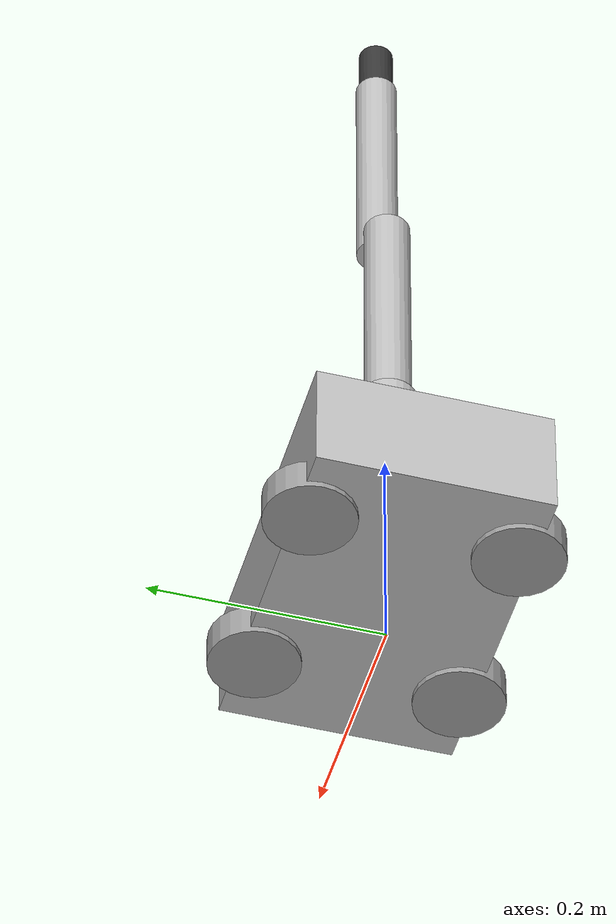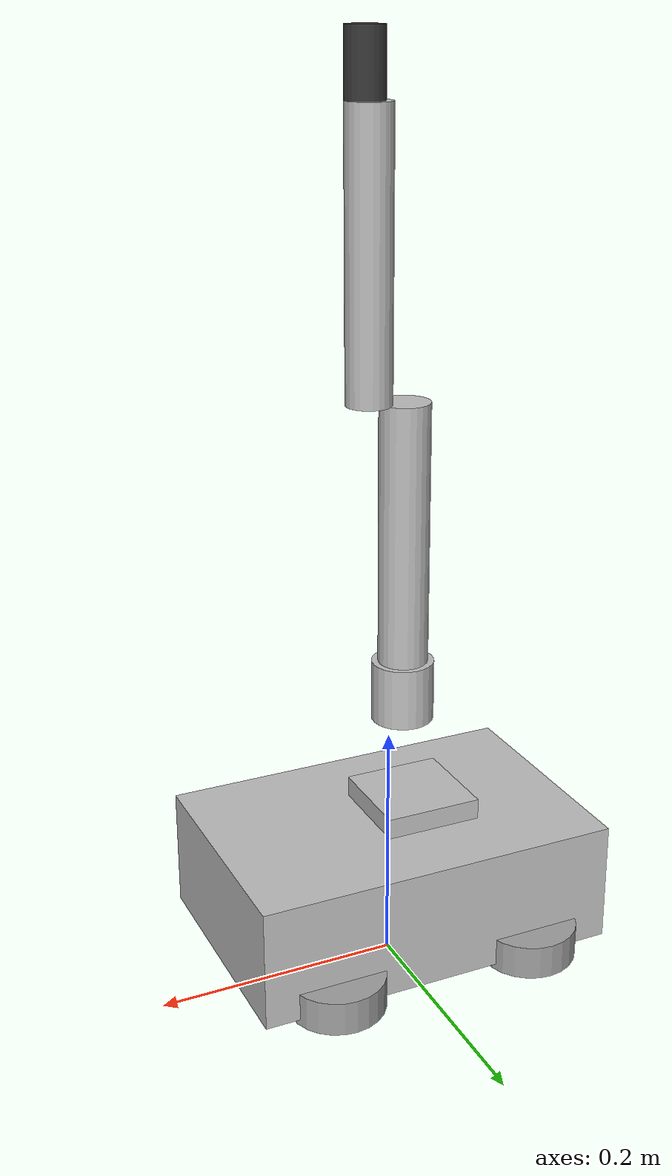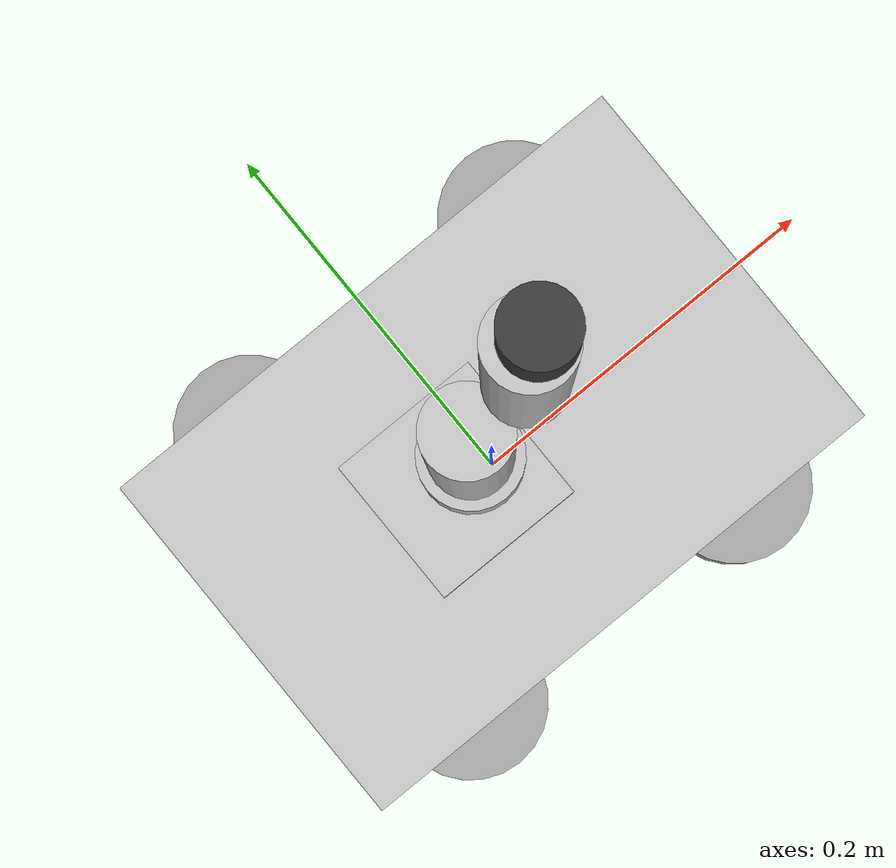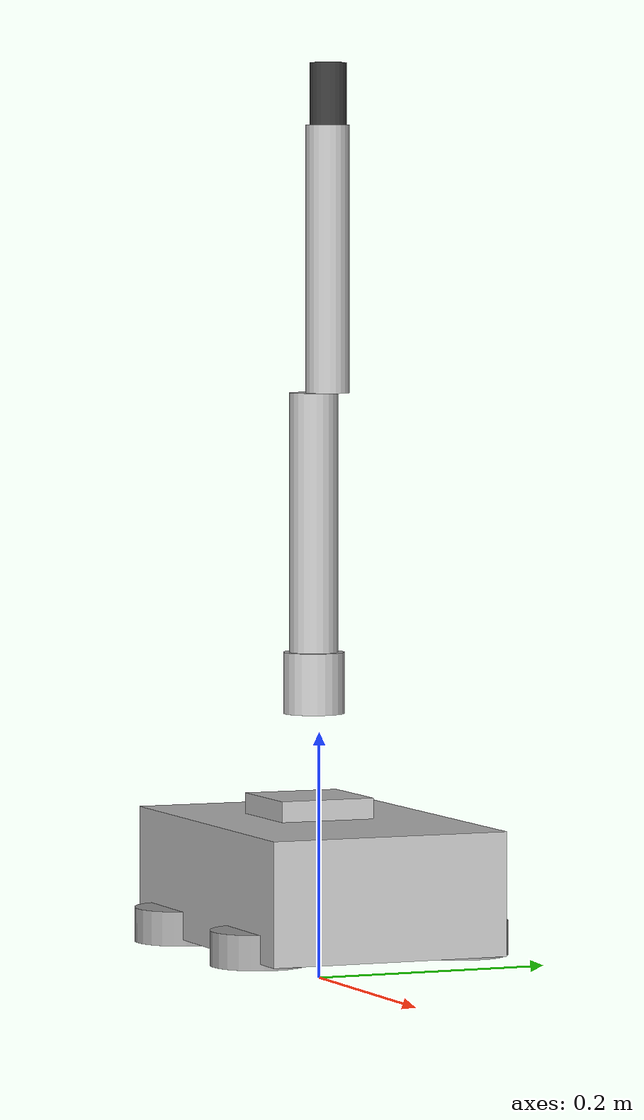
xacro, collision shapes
<?xml version="1.0"?>
<robot xmlns:xacro="http://www.ros.org/wiki/xacro" name="ugv02_with_arm">

  <xacro:include filename="$(find ugv_with_arm_camera_description)/urdf/components/ugv_rover_base.urdf.xacro"/>
  <xacro:include filename="$(find ugv_with_arm_camera_description)/urdf/components/roarm_m2s.urdf.xacro"/>
  <xacro:include filename="$(find ugv_with_arm_camera_description)/urdf/components/oak_d_pro.urdf.xacro"/>

  <!-- UGV02 chassis -->
  <xacro:ugv_rover_base prefix=""/>

  <!--
    RoArm M2-S — measured from base_link origin
    x = -22.3mm (behind center)
    y =   0.0mm (centered)
    z = +88.0mm (above base_link)
  -->
  <xacro:roarm_m2s
    prefix="arm_"
    parent="base_link"
    origin_xyz="-0.0223 0.0 0.037"
    origin_rpy="0 0 0"
  />

  <!--
    OAK-D Pro — measured from base_link origin
    x = +60.45mm (forward)
    y =   0.0mm  (centered)
    z = +76.88mm (above base_link)
    No tilt.
  -->
  <xacro:oak_d_pro
    prefix="oak_d_pro_"
    parent="base_link"
    origin_xyz="0.06045 0.0 0.024"
    origin_rpy="0 0 0"
  />

</robot>

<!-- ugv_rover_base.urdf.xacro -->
<robot xmlns:xacro="http://www.ros.org/wiki/xacro" name="ugv_rover_base">
<xacro:macro name="ugv_rover_base" params="prefix:='' wheel_joint_type:='continuous'">

  <link name="${prefix}base_footprint"/>

  <joint name="${prefix}base_joint" type="fixed">
    <parent link="${prefix}base_footprint"/>
    <child  link="${prefix}base_link"/>
    <origin xyz="0.000460087791654118 0 0.08" rpy="0 0 0"/>
  </joint>

  <link name="${prefix}base_link">
    <inertial>
      <origin xyz="-0.000460087791654118 0 -0.0147959620149623" rpy="0 0 0"/>
      <mass value="2.78375064359473"/>
      <inertia ixx="0.00651567554169617" ixy="0" ixz="3.77886436056975E-05"
               iyy="0.00933991752413667" iyz="0" izz="0.0121583506563461"/>
    </inertial>
    <visual>
      <origin xyz="0 0 0" rpy="0 0 0"/>
      <geometry>
        <mesh filename="package://ugv_description/meshes/ugv_rover/base_link.stl"/>
      </geometry>
      <material name="chassis_grey"><color rgba="0.75 0.75 0.75 1"/></material>
    </visual>
    <collision>
      <origin xyz="0 0 0" rpy="0 0 0"/>
      <geometry><box size="0.30 0.20 0.10"/></geometry>
    </collision>
  </link>

  <joint name="${prefix}imu_joint" type="fixed">
    <parent link="${prefix}base_link"/>
    <child  link="${prefix}base_imu_link"/>
    <origin xyz="0 0 0" rpy="0 0 0"/>
  </joint>
  <link name="${prefix}base_imu_link"/>

  <!-- Left front wheel -->
  <joint name="${prefix}left_up_wheel_joint" type="${wheel_joint_type}">
    <origin xyz="0.0855 0.08726 -0.041212" rpy="1.5708 0 0"/>
    <parent link="${prefix}base_link"/>
    <child  link="${prefix}left_up_wheel_link"/>
    <axis xyz="0 0 -1"/>
  </joint>
  <link name="${prefix}left_up_wheel_link">
    <inertial>
      <origin xyz="0 0 0" rpy="1.5708 0 0"/>
      <mass value="0.207085933743005"/>
      <inertia ixx="0.000116541923504163" ixy="0" ixz="0"
               iyy="0.000170742352371108" iyz="0" izz="0.000116541923504163"/>
    </inertial>
    <visual>
      <origin xyz="0 0 0" rpy="1.5708 0 0"/>
      <geometry>
        <mesh filename="package://ugv_description/meshes/ugv_rover/left_up_wheel_link.stl"/>
      </geometry>
      <material name="wheel_grey"><color rgba="0.627 0.627 0.627 1"/></material>
    </visual>
    <collision>
      <origin xyz="0 0 0" rpy="1.5708 0 0"/>
      <geometry><cylinder radius="0.039" length="0.028"/></geometry>
    </collision>
  </link>

  <!-- Left rear wheel -->
  <joint name="${prefix}left_down_wheel_joint" type="${wheel_joint_type}">
    <origin xyz="-0.0855 0.08726 -0.041212" rpy="1.5708 0 0"/>
    <parent link="${prefix}base_link"/>
    <child  link="${prefix}left_down_wheel_link"/>
    <axis xyz="0 0 -1"/>
  </joint>
  <link name="${prefix}left_down_wheel_link">
    <inertial>
      <origin xyz="0 0 0" rpy="1.5708 0 0"/>
      <mass value="0.207085933743005"/>
      <inertia ixx="0.000116541923504163" ixy="0" ixz="0"
               iyy="0.000170742352371108" iyz="0" izz="0.000116541923504163"/>
    </inertial>
    <visual>
      <origin xyz="0 0 0" rpy="1.5708 0 0"/>
      <geometry>
        <mesh filename="package://ugv_description/meshes/ugv_rover/left_down_wheel_link.stl"/>
      </geometry>
      <material name="wheel_grey"><color rgba="0.627 0.627 0.627 1"/></material>
    </visual>
    <collision>
      <origin xyz="0 0 0" rpy="1.5708 0 0"/>
      <geometry><cylinder radius="0.039" length="0.028"/></geometry>
    </collision>
  </link>

  <!-- Right front wheel -->
  <joint name="${prefix}right_up_wheel_joint" type="${wheel_joint_type}">
    <origin xyz="0.0855 -0.08726 -0.041212" rpy="1.5708 0 0"/>
    <parent link="${prefix}base_link"/>
    <child  link="${prefix}right_up_wheel_link"/>
    <axis xyz="0 0 -1"/>
  </joint>
  <link name="${prefix}right_up_wheel_link">
    <inertial>
      <origin xyz="0 0 0" rpy="1.5708 0 0"/>
      <mass value="0.207085933743005"/>
      <inertia ixx="0.000116541923504163" ixy="0" ixz="0"
               iyy="0.000170742352371108" iyz="0" izz="0.000116541923504163"/>
    </inertial>
    <visual>
      <origin xyz="0 0 0" rpy="1.5708 0 0"/>
      <geometry>
        <mesh filename="package://ugv_description/meshes/ugv_rover/right_up_wheel_link.stl"/>
      </geometry>
      <material name="wheel_grey"><color rgba="0.627 0.627 0.627 1"/></material>
    </visual>
    <collision>
      <origin xyz="0 0 0" rpy="1.5708 0 0"/>
      <geometry><cylinder radius="0.039" length="0.028"/></geometry>
    </collision>
  </link>

  <!-- Right rear wheel -->
  <joint name="${prefix}right_down_wheel_joint" type="${wheel_joint_type}">
    <origin xyz="-0.0855 -0.08726 -0.041212" rpy="1.5708 0 0"/>
    <parent link="${prefix}base_link"/>
    <child  link="${prefix}right_down_wheel_link"/>
    <axis xyz="0 0 -1"/>
  </joint>
  <link name="${prefix}right_down_wheel_link">
    <inertial>
      <origin xyz="0 0 0" rpy="1.5708 0 0"/>
      <mass value="0.207085933743005"/>
      <inertia ixx="0.000116541923504163" ixy="0" ixz="0"
               iyy="0.000170742352371108" iyz="0" izz="0.000116541923504163"/>
    </inertial>
    <visual>
      <origin xyz="0 0 0" rpy="1.5708 0 0"/>
      <geometry>
        <mesh filename="package://ugv_description/meshes/ugv_rover/right_down_wheel_link.stl"/>
      </geometry>
      <material name="wheel_grey"><color rgba="0.627 0.627 0.627 1"/></material>
    </visual>
    <collision>
      <origin xyz="0 0 0" rpy="1.5708 0 0"/>
      <geometry><cylinder radius="0.039" length="0.028"/></geometry>
    </collision>
  </link>

</xacro:macro>
</robot>

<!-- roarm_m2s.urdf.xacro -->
<robot xmlns:xacro="http://www.ros.org/wiki/xacro" name="roarm_m2s">
<xacro:macro name="roarm_m2s" params="prefix:='arm_' parent origin_xyz origin_rpy">

  <joint name="${prefix}base_joint" type="fixed">
    <parent link="${parent}"/>
    <child  link="${prefix}base_link"/>
    <origin xyz="${origin_xyz}" rpy="${origin_rpy}"/>
  </joint>

  <link name="${prefix}base_link">
    <inertial>
      <origin xyz="0.00373847392098165 0 0.0264265327292804" rpy="0 0 0"/>
      <mass value="0.326392759093976"/>
      <inertia ixx="0.000224202818963409" ixy="0" ixz="-2.99224798427881E-05"
               iyy="0.000286616921839535" iyz="0" izz="0.000349957607258242"/>
    </inertial>
    <visual>
      <origin xyz="0 0 0" rpy="0 0 0"/>
      <geometry>
        <mesh filename="package://roarm_description/meshes/base_link.STL"/>
      </geometry>
      <material name="arm_grey"><color rgba="0.75 0.75 0.75 1"/></material>
    </visual>
    <collision>
      <origin xyz="0 0 0" rpy="0 0 0"/>
      <geometry><box size="0.08 0.08 0.06"/></geometry>
    </collision>
  </link>

  <joint name="${prefix}base_link_to_link1" type="revolute">
    <origin xyz="0.0100000008759151 0 0.123059270461044" rpy="0 0 0"/>
    <parent link="${prefix}base_link"/>
    <child  link="${prefix}link1"/>
    <axis xyz="0 0 -1"/>
    <limit lower="-3.1416" upper="3.1416" effort="10.0" velocity="1.0"/>
  </joint>
  <link name="${prefix}link1">
    <inertial>
      <origin xyz="0 9.70240468164796E-06 -0.0146667419724465" rpy="0 0 0"/>
      <mass value="0.0928887601998397"/>
      <inertia ixx="6.09210980255232E-05" ixy="0" ixz="0"
               iyy="2.53493566630784E-05" iyz="2.16442830142331E-08"
               izz="4.88050835919342E-05"/>
    </inertial>
    <visual>
      <origin xyz="0 0 0" rpy="0 0 0"/>
      <geometry>
        <mesh filename="package://roarm_description/meshes/link1.STL"/>
      </geometry>
      <material name="arm_grey"><color rgba="0.75 0.75 0.75 1"/></material>
    </visual>
    <collision>
      <origin xyz="0 0 0" rpy="0 0 0"/>
      <geometry><cylinder radius="0.025" length="0.05"/></geometry>
    </collision>
  </link>

  <joint name="${prefix}link1_to_link2" type="revolute">
    <origin xyz="0 0 0" rpy="-1.5707963267949 -1.5707963267949 0"/>
    <parent link="${prefix}link1"/>
    <child  link="${prefix}link2"/>
    <axis xyz="0 0 -1"/>
    <limit lower="-1.5708" upper="1.5708" effort="10.0" velocity="1.0"/>
  </joint>
  <link name="${prefix}link2">
    <inertial>
      <origin xyz="0.122021157535333 0 0" rpy="0 0 0"/>
      <mass value="0.0895817175833772"/>
      <inertia ixx="2.6269354271334E-05" ixy="-2.55344668379587E-06" ixz="0"
               iyy="0.000350369536011831" iyz="0" izz="0.000333056833230846"/>
    </inertial>
    <visual>
      <origin xyz="0 0 0" rpy="0 0 0"/>
      <geometry>
        <mesh filename="package://roarm_description/meshes/link2.STL"/>
      </geometry>
      <material name="arm_grey"><color rgba="0.75 0.75 0.75 1"/></material>
    </visual>
    <collision>
      <origin xyz="0.118 0 0" rpy="0 1.5708 0"/>
      <geometry><cylinder radius="0.02" length="0.236"/></geometry>
    </collision>
  </link>

  <joint name="${prefix}link2_to_link3" type="revolute">
    <origin xyz="0.236815132922094 0.0300023995170449 0" rpy="0 0 1.5707963267949"/>
    <parent link="${prefix}link2"/>
    <child  link="${prefix}link3"/>
    <axis xyz="0 0 1"/>
    <limit lower="-1" upper="3.1416" effort="10.0" velocity="1.0"/>
  </joint>
  <link name="${prefix}link3">
    <inertial>
      <origin xyz="-0.00076280945740961 -0.114419656440929 0" rpy="0 0 0"/>
      <mass value="0.123009044986454"/>
      <inertia ixx="0.000104111883333949" ixy="0" ixz="0"
               iyy="1.46357151076022E-05" iyz="0" izz="0.000104009297710106"/>
    </inertial>
    <visual>
      <origin xyz="0 0 0" rpy="0 0 0"/>
      <geometry>
        <mesh filename="package://roarm_description/meshes/link3.STL"/>
      </geometry>
      <material name="arm_grey"><color rgba="0.75 0.75 0.75 1"/></material>
    </visual>
    <collision>
      <origin xyz="0 -0.108 0" rpy="1.5708 0 0"/>
      <geometry><cylinder radius="0.018" length="0.216"/></geometry>
    </collision>
  </link>

  <joint name="${prefix}link3_to_gripper_link" type="revolute">
    <origin xyz="0.002906 -0.21599 -0.00066683" rpy="-1.5708 0 -1.5708"/>
    <parent link="${prefix}link3"/>
    <child  link="${prefix}gripper_link"/>
    <axis xyz="0 0 1"/>
    <limit lower="0" upper="1.5" effort="10.0" velocity="1.0"/>
  </joint>
  <link name="${prefix}gripper_link">
    <inertial>
      <origin xyz="0.0288857415118809 0 0" rpy="0 0 0"/>
      <mass value="0.00365697683069397"/>
      <inertia ixx="1.15139272656909E-06" ixy="0" ixz="0"
               iyy="2.33034171341163E-06" iyz="0" izz="1.47179863096272E-06"/>
    </inertial>
    <visual>
      <origin xyz="0 0 0" rpy="0 0 0"/>
      <geometry>
        <mesh filename="package://roarm_description/meshes/gripper_link.STL"/>
      </geometry>
      <material name="arm_dark"><color rgba="0.22 0.22 0.22 1"/></material>
    </visual>
    <collision>
      <origin xyz="0.025 0 0" rpy="0 1.5708 0"/>
      <geometry><cylinder radius="0.015" length="0.05"/></geometry>
    </collision>
  </link>

  <!-- TCP — tool center point used by MoveIt2 as planning target -->
  <joint name="${prefix}link3_to_hand_tcp" type="fixed">
    <origin xyz="0.002 -0.2802 0" rpy="-1.5708 0 -1.5708"/>
    <parent link="${prefix}link3"/>
    <child  link="${prefix}hand_tcp"/>
  </joint>
  <link name="${prefix}hand_tcp"/>

</xacro:macro>
</robot>

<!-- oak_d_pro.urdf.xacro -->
<robot xmlns:xacro="http://www.ros.org/wiki/xacro" name="oak_d_pro">
<xacro:macro name="oak_d_pro" params="prefix:='oak_d_pro_' parent origin_xyz origin_rpy">

  <joint name="${prefix}joint" type="fixed">
    <parent link="${parent}"/>
    <child  link="${prefix}link"/>
    <origin xyz="${origin_xyz}" rpy="${origin_rpy}"/>
  </joint>

  <link name="${prefix}link">
    <visual>
      <origin xyz="0 0 0" rpy="0 0 0"/>
      <geometry>
        <!-- OAK-D Pro body: 97mm wide, 30mm tall, 36mm deep -->
        <box size="0.036 0.097 0.030"/>
      </geometry>
      <material name="oak_black"><color rgba="0.1 0.1 0.1 1"/></material>
    </visual>
    <collision>
      <origin xyz="0 0 0" rpy="0 0 0"/>
      <geometry><box size="0.036 0.097 0.030"/></geometry>
    </collision>
    <inertial>
      <mass value="0.09"/>
      <inertia ixx="0.0001" ixy="0" ixz="0"
               iyy="0.0001" iyz="0" izz="0.0001"/>
    </inertial>
  </link>

  <!--
    Optical frame convention: Z forward, X right, Y down.
    This rotation converts from ROS body frame to camera optical frame.
    depthai-ros publishes all camera data in this frame.
  -->
  <joint name="${prefix}rgb_optical_joint" type="fixed">
    <parent link="${prefix}link"/>
    <child  link="${prefix}rgb_camera_optical_frame"/>
    <origin xyz="0 0 0" rpy="${-pi/2} 0 ${-pi/2}"/>
  </joint>
  <link name="${prefix}rgb_camera_optical_frame"/>

  <joint name="${prefix}depth_joint" type="fixed">
    <parent link="${prefix}link"/>
    <child  link="${prefix}depth_frame"/>
    <origin xyz="0 0 0" rpy="${-pi/2} 0 ${-pi/2}"/>
  </joint>
  <link name="${prefix}depth_frame"/>

</xacro:macro>
</robot>
